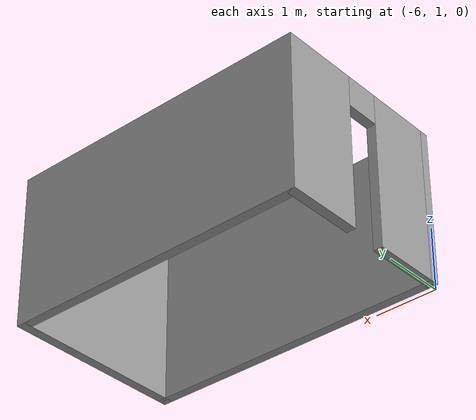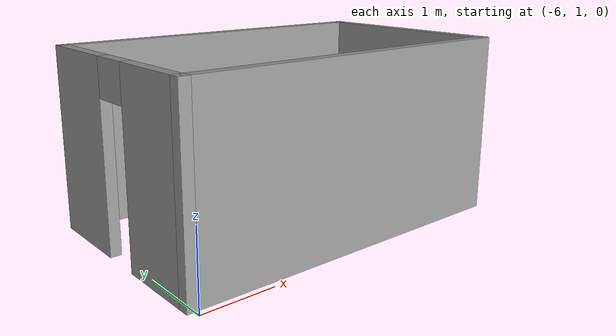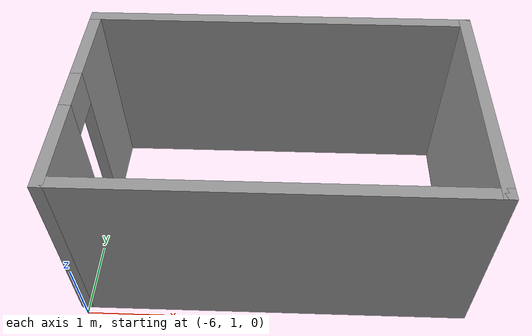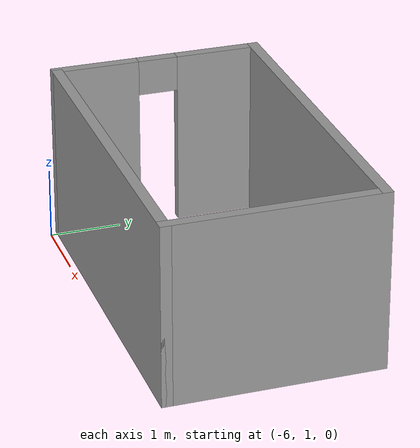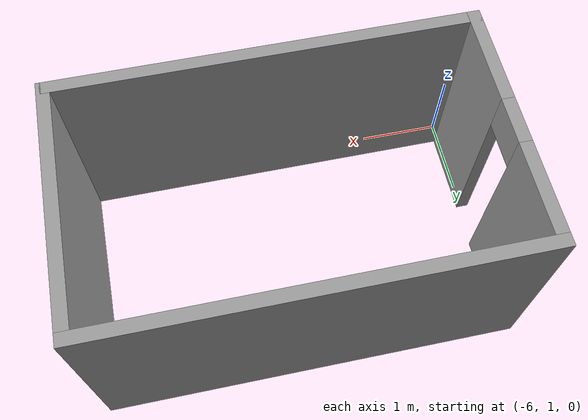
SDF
<?xml version='1.0'?>
<sdf version='1.7'>
  <model name='hotel_room_3x5'>
    <pose>-3.04925 2.04343 0 0 -0 0</pose>
    <link name='Wall_5'>
      <collision name='Wall_5_Collision'>
        <geometry>
          <box>
            <size>5 0.15 2.5</size>
          </box>
        </geometry>
        <pose>0 0 1.25 0 -0 0</pose>
      </collision>
      <visual name='Wall_5_Visual'>
        <pose>0 0 1.25 0 -0 0</pose>
        <geometry>
          <box>
            <size>5 0.15 2.5</size>
          </box>
        </geometry>
        <material>
          <script>
            <uri>file://media/materials/scripts/gazebo.material</uri>
            <name>Gazebo/Grey</name>
          </script>
          <ambient>1 1 1 1</ambient>
        </material>
        <meta>
          <layer>0</layer>
        </meta>
      </visual>
      <pose>-0.549253 1.96843 0 0 -0 0</pose>
    </link>
    <link name='Wall_6'>
      <collision name='Wall_6_Collision'>
        <geometry>
          <box>
            <size>3 0.15 2.5</size>
          </box>
        </geometry>
        <pose>0 0 1.25 0 -0 0</pose>
      </collision>
      <visual name='Wall_6_Visual'>
        <pose>0 0 1.25 0 -0 0</pose>
        <geometry>
          <box>
            <size>3 0.15 2.5</size>
          </box>
        </geometry>
        <material>
          <script>
            <uri>file://media/materials/scripts/gazebo.material</uri>
            <name>Gazebo/Grey</name>
          </script>
          <ambient>1 1 1 1</ambient>
        </material>
        <meta>
          <layer>0</layer>
        </meta>
      </visual>
      <pose>1.87575 0.543429 0 0 -0 -1.5708</pose>
    </link>
    <link name='Wall_7'>
      <collision name='Wall_7_Collision'>
        <geometry>
          <box>
            <size>5 0.15 2.5</size>
          </box>
        </geometry>
        <pose>0 0 1.25 0 -0 0</pose>
      </collision>
      <visual name='Wall_7_Visual'>
        <pose>0 0 1.25 0 -0 0</pose>
        <geometry>
          <box>
            <size>5 0.15 2.5</size>
          </box>
        </geometry>
        <material>
          <script>
            <uri>file://media/materials/scripts/gazebo.material</uri>
            <name>Gazebo/Grey</name>
          </script>
          <ambient>1 1 1 1</ambient>
        </material>
        <meta>
          <layer>0</layer>
        </meta>
      </visual>
      <pose>-0.549253 -0.881571 0 0 -0 3.14159</pose>
    </link>
    <link name='Wall_8'>
      <pose>-2.97425 0.543429 0 0 -0 1.5708</pose>
      <visual name='Wall_8_Visual_0'>
        <pose>-0.88975 0 1.25 0 -0 0</pose>
        <geometry>
          <box>
            <size>1.2205 0.15 2.5</size>
          </box>
        </geometry>
        <material>
          <script>
            <uri>file://media/materials/scripts/gazebo.material</uri>
            <name>Gazebo/Grey</name>
          </script>
          <ambient>1 1 1 1</ambient>
        </material>
        <meta>
          <layer>0</layer>
        </meta>
      </visual>
      <collision name='Wall_8_Collision_0'>
        <geometry>
          <box>
            <size>1.2205 0.15 2.5</size>
          </box>
        </geometry>
        <pose>-0.88975 0 1.25 0 -0 0</pose>
      </collision>
      <visual name='Wall_8_Visual_1'>
        <pose>0.887529 0 1.25 0 -0 0</pose>
        <geometry>
          <box>
            <size>1.22494 0.15 2.5</size>
          </box>
        </geometry>
        <material>
          <script>
            <uri>file://media/materials/scripts/gazebo.material</uri>
            <name>Gazebo/Grey</name>
          </script>
          <ambient>1 1 1 1</ambient>
        </material>
        <meta>
          <layer>0</layer>
        </meta>
      </visual>
      <collision name='Wall_8_Collision_1'>
        <geometry>
          <box>
            <size>1.22494 0.15 2.5</size>
          </box>
        </geometry>
        <pose>0.887529 0 1.25 0 -0 0</pose>
      </collision>
      <visual name='Wall_8_Visual_2'>
        <pose>-0.00222 0 2.25 0 -0 0</pose>
        <geometry>
          <box>
            <size>0.554558 0.15 0.5</size>
          </box>
        </geometry>
        <material>
          <script>
            <uri>file://media/materials/scripts/gazebo.material</uri>
            <name>Gazebo/Grey</name>
          </script>
          <ambient>1 1 1 1</ambient>
        </material>
        <meta>
          <layer>0</layer>
        </meta>
      </visual>
      <collision name='Wall_8_Collision_2'>
        <geometry>
          <box>
            <size>0.554558 0.15 0.5</size>
          </box>
        </geometry>
        <pose>-0.00222 0 2.25 0 -0 0</pose>
      </collision>
    </link>
    <static>1</static>
  </model>
</sdf>
